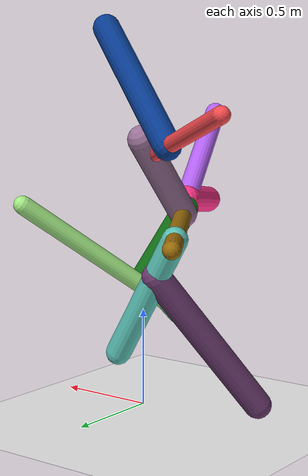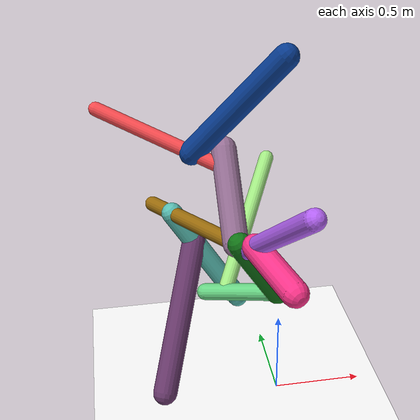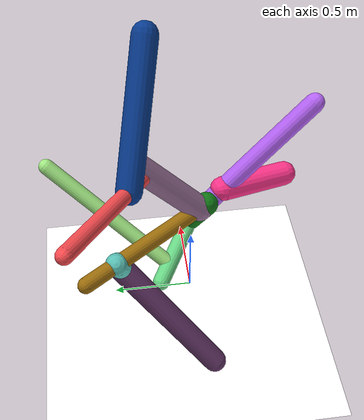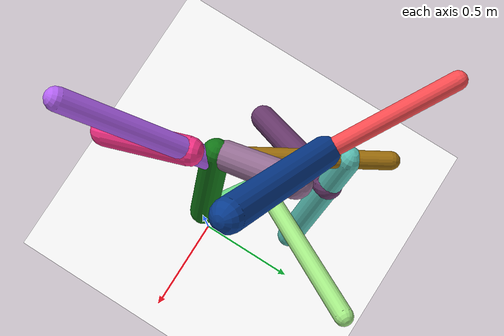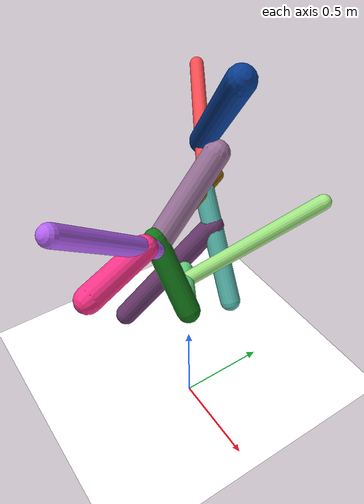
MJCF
<mujoco model="morphology">
  <option timestep="0.01"/>
  <default>
    <default class="/"/>
    <default class="0/"/>
    <default class="0/1/"/>
    <default class="0/2/"/>
    <default class="0/2/3/"/>
    <default class="0/2/3/4/"/>
    <default class="0/2/3/4/5/"/>
    <default class="0/2/3/6/"/>
    <default class="0/2/3/6/7/"/>
    <default class="0/2/3/6/7/8/"/>
    <default class="0/2/9/"/>
    <default class="0/2/9/10/"/>
  </default>
  <asset>
    <texture name="texplane" type="2d" builtin="checker" rgb1="0.10000000000000001 0.20000000000000001 0.29999999999999999" rgb2="0.20000000000000001 0.29999999999999999 0.40000000000000002" width="300" height="300"/>
    <material name="MatPlane" class="/" texture="texplane" texrepeat="20 20" specular="1" shininess="1" reflectance="0.5"/>
  </asset>
  <worldbody>
    <light name="//unnamed_light_0" class="/" directional="true" pos="0 0 1.5" dir="0 0 -1.3" cutoff="100" exponent="1" diffuse="1 1 1" specular="0.10000000000000001 0.10000000000000001 0.10000000000000001"/>
    <geom name="ground" class="/" type="plane" size="15 15 0.5" material="MatPlane" rgba="1 1 1 1"/>
    <site name="body" class="/" size="9.9999999999999995e-07 9.9999999999999995e-07 9.9999999999999995e-07" pos="0 0 0.67829695940017698"/>
    <body pos="0 0 0.67829695940017698" name="0/">
      <freejoint name="0/"/>
      <geom name="0/geom" class="0/" type="capsule" contype="1" conaffinity="1" condim="3" size="0.0483660345895311" rgba="0.41094386830967689 0.84004892882108584 0.52018931476803842 1" friction="0.59999999999999998 0.10000000000000001 0.10000000000000001" fromto="0 0 0 -0.38193567033395431 0.22649511795986321 -0.10607651722921729"/>
      <site name="0/end0" class="0/" size="0.0050000000000000001" pos="-0.38193567033395431 0.22649511795986321 -0.10607651722921729"/>
      <site name="0/attach1" class="0/" size="9.9999999999999995e-07 9.9999999999999995e-07 9.9999999999999995e-07" pos="-0.27826222426195835 0.1650147922891799 -0.077282877507500153"/>
      <body pos="-0.27826222426195835 0.1650147922891799 -0.077282877507500153" name="0/1/">
        <geom name="0/1/geom" class="0/1/" type="capsule" contype="1" conaffinity="1" condim="3" size="0.043687060271477118" rgba="0.63786593497941912 0.91874543900709693 0.51533837400754556 1" friction="0.59999999999999998 0.10000000000000001 0.10000000000000001" fromto="0 0 0 0.36125960737039353 0.63655947439329053 0.51742291570573062"/>
        <site name="0/1/end1" class="0/1/" size="0.0050000000000000001" pos="0.36125960737039353 0.63655947439329053 0.51742291570573062"/>
      </body>
      <site name="0/attach2" class="0/" size="9.9999999999999995e-07 9.9999999999999995e-07 9.9999999999999995e-07" pos="-0.011078693913618362 0.0065698762375668426 -0.0030769298525524179"/>
      <body pos="-0.011078693913618362 0.0065698762375668426 -0.0030769298525524179" name="0/2/">
        <geom name="0/2/geom" class="0/2/" type="capsule" contype="1" conaffinity="1" condim="3" size="0.065122725314739477" rgba="0.072172827804032669 0.46596828733030449 0.092570430458930097 1" friction="0.59999999999999998 0.10000000000000001 0.10000000000000001" fromto="0 0 0 -0.22010603590919586 -0.05320626547681484 0.36221440549367911"/>
        <site name="0/2/end2" class="0/2/" size="0.0050000000000000001" pos="-0.22010603590919586 -0.05320626547681484 0.36221440549367911"/>
        <site name="0/2/attach3" class="0/2/" size="9.9999999999999995e-07 9.9999999999999995e-07 9.9999999999999995e-07" pos="-0.211112024740851 -0.051032141791620612 0.34741353738077774"/>
        <body pos="-0.211112024740851 -0.051032141791620612 0.34741353738077774" name="0/2/3/">
          <joint name="0/2/3/joint/" class="0/2/" type="hinge" axis="0.85703274839727372 -0.074884086881490813 0.50979137076508141" limited="true" range="-45.152647463835109 45.152647463835109"/>
          <geom name="0/2/3/geom" class="0/2/3/" type="capsule" contype="1" conaffinity="1" condim="3" size="0.043133629195659447" rgba="0.60691610621722702 0.42379121445857104 0.045317016395971743 1" friction="0.59999999999999998 0.10000000000000001 0.10000000000000001" fromto="0 0 0 -0.41108861589311835 0.67228586060736206 -0.065804615223018836"/>
          <site name="0/2/3/end3" class="0/2/3/" size="0.0050000000000000001" pos="-0.41108861589311835 0.67228586060736206 -0.065804615223018836"/>
          <site name="0/2/3/attach4" class="0/2/3/" size="9.9999999999999995e-07 9.9999999999999995e-07 9.9999999999999995e-07" pos="-0.31085745054789887 0.5083698759542884 -0.049760207730567621"/>
          <body pos="-0.31085745054789887 0.5083698759542884 -0.049760207730567621" name="0/2/3/4/">
            <geom name="0/2/3/4/geom" class="0/2/3/4/" type="capsule" contype="1" conaffinity="1" condim="3" size="0.061182086752328106" rgba="0.35242733409974325 0.75399225318358931 0.70771090766524558 1" friction="0.59999999999999998 0.10000000000000001 0.10000000000000001" fromto="0 0 0 0.37012985112784769 -0.053955410726649333 -0.5874109454923534"/>
            <site name="0/2/3/4/end4" class="0/2/3/4/" size="0.0050000000000000001" pos="0.37012985112784769 -0.053955410726649333 -0.5874109454923534"/>
            <site name="0/2/3/4/attach5" class="0/2/3/4/" size="9.9999999999999995e-07 9.9999999999999995e-07 9.9999999999999995e-07" pos="0.11789168133136163 -0.017185574381818069 -0.18709883513993636"/>
            <body pos="0.11789168133136163 -0.017185574381818069 -0.18709883513993636" name="0/2/3/4/5/">
              <joint name="0/2/3/4/5/joint/" class="0/2/3/4/" type="hinge" axis="0.84705954260569249 0.048614993430904307 0.52926998185647023" limited="true" range="-50.809587604132048 50.809587604132048"/>
              <geom name="0/2/3/4/5/geom" class="0/2/3/4/5/" type="capsule" contype="1" conaffinity="1" condim="3" size="0.068869044885044015" rgba="0.41733231819738503 0.22800677258760793 0.43075315708937134 1" friction="0.59999999999999998 0.10000000000000001 0.10000000000000001" fromto="0 0 0 -0.2463883180836175 -0.50490852414709697 -0.68577451208343332"/>
              <site name="0/2/3/4/5/end5" class="0/2/3/4/5/" size="0.0050000000000000001" pos="-0.2463883180836175 -0.50490852414709697 -0.68577451208343332"/>
            </body>
          </body>
          <site name="0/2/3/attach6" class="0/2/3/" size="9.9999999999999995e-07 9.9999999999999995e-07 9.9999999999999995e-07" pos="-0.022176827678627636 0.036267527499092025 -0.0035499343835848486"/>
          <body pos="-0.022176827678627636 0.036267527499092025 -0.0035499343835848486" name="0/2/3/6/">
            <joint name="0/2/3/6/joint/" class="0/2/3/" type="hinge" axis="-0.85424602402588234 -0.51739631116929052 0.050643732330686551" limited="true" range="-65.428093904964399 65.428093904964399"/>
            <geom name="0/2/3/6/geom" class="0/2/3/6/" type="capsule" contype="1" conaffinity="1" condim="3" size="0.069935332838410774" rgba="0.60578592249185659 0.44799156018562658 0.59953272262127155 1" friction="0.59999999999999998 0.10000000000000001 0.10000000000000001" fromto="0 0 0 -0.0063602210663751269 0.34685677851704466 0.38741562296409882"/>
            <site name="0/2/3/6/end6" class="0/2/3/6/" size="0.0050000000000000001" pos="-0.0063602210663751269 0.34685677851704466 0.38741562296409882"/>
            <site name="0/2/3/6/attach7" class="0/2/3/6/" size="9.9999999999999995e-07 9.9999999999999995e-07 9.9999999999999995e-07" pos="-0.0050151043921345976 0.27350039176765478 0.30548148751944953"/>
            <body pos="-0.0050151043921345976 0.27350039176765478 0.30548148751944953" name="0/2/3/6/7/">
              <geom name="0/2/3/6/7/geom" class="0/2/3/6/7/" type="capsule" contype="1" conaffinity="1" condim="3" size="0.04000899245714569" rgba="0.97365984277891204 0.29210365662059035 0.30983134729065687 1" friction="0.59999999999999998 0.10000000000000001 0.10000000000000001" fromto="0 0 0 -0.65967191149440141 0.39973609625347573 0.22707137351289719"/>
              <site name="0/2/3/6/7/end7" class="0/2/3/6/7/" size="0.0050000000000000001" pos="-0.65967191149440141 0.39973609625347573 0.22707137351289719"/>
              <site name="0/2/3/6/7/attach8" class="0/2/3/6/7/" size="9.9999999999999995e-07 9.9999999999999995e-07 9.9999999999999995e-07" pos="-0.17119013075583722 0.10373471022957328 0.058926835363537128"/>
              <body pos="-0.17119013075583722 0.10373471022957328 0.058926835363537128" name="0/2/3/6/7/8/">
                <joint name="0/2/3/6/7/8/joint/" class="0/2/3/6/7/" type="hinge" axis="0 -0.49392487178698874 0.86950458367406336" limited="true" range="-33.604849512799461 33.604849512799461"/>
                <geom name="0/2/3/6/7/8/geom" class="0/2/3/6/7/8/" type="capsule" contype="1" conaffinity="1" condim="3" size="0.067352288441571026" rgba="0.030700051412755891 0.23476968110425278 0.56716857722388092 1" friction="0.59999999999999998 0.10000000000000001 0.10000000000000001" fromto="0 0 0 0.47175137649121002 -0.14337363349943133 0.54719731215080536"/>
                <site name="0/2/3/6/7/8/end8" class="0/2/3/6/7/8/" size="0.0050000000000000001" pos="0.47175137649121002 -0.14337363349943133 0.54719731215080536"/>
              </body>
            </body>
          </body>
        </body>
        <site name="0/2/attach9" class="0/2/" size="9.9999999999999995e-07 9.9999999999999995e-07 9.9999999999999995e-07" pos="-0.19040121524259312 -0.046025714667292897 0.31333108471782961"/>
        <body pos="-0.19040121524259312 -0.046025714667292897 0.31333108471782961" name="0/2/9/">
          <joint name="0/2/9/joint/" class="0/2/" type="hinge" axis="0.85703274839727372 -0.074884086881490813 0.50979137076508141" limited="true" range="-60.532614972638861 60.532614972638861"/>
          <geom name="0/2/9/geom" class="0/2/9/" type="capsule" contype="1" conaffinity="1" condim="3" size="0.053119780988781728" rgba="0.71101389480019617 0.38841477203625874 0.96378934704675578 1" friction="0.59999999999999998 0.10000000000000001 0.10000000000000001" fromto="0 0 0 0.18980309164831488 -0.59702018619886887 0.50379507274244717"/>
          <site name="0/2/9/end9" class="0/2/9/" size="0.0050000000000000001" pos="0.18980309164831488 -0.59702018619886887 0.50379507274244717"/>
          <site name="0/2/9/attach10" class="0/2/9/" size="9.9999999999999995e-07 9.9999999999999995e-07 9.9999999999999995e-07" pos="0.033271080312001468 -0.10465322977833059 0.08831155583631084"/>
          <body pos="0.033271080312001468 -0.10465322977833059 0.08831155583631084" name="0/2/9/10/">
            <joint name="0/2/9/10/joint/" class="0/2/9/" type="hinge" axis="0.97172862635562252 0.18044081856556776 -0.15226486041238491" limited="true" range="-58.414681064799467 58.414681064799467"/>
            <geom name="0/2/9/10/geom" class="0/2/9/10/" type="capsule" contype="1" conaffinity="1" condim="3" size="0.068259665805938813" rgba="0.99514182884422742 0.19980919465231772 0.54348417174867192 1" friction="0.59999999999999998 0.10000000000000001 0.10000000000000001" fromto="0 0 0 0.11977159218486033 -0.37091969580868345 -0.0478499642257455"/>
            <site name="0/2/9/10/end10" class="0/2/9/10/" size="0.0050000000000000001" pos="0.11977159218486033 -0.37091969580868345 -0.0478499642257455"/>
          </body>
        </body>
      </body>
      <camera name="0/iso" class="0/" mode="trackcom" pos="-2.2999999999999998 -2.2999999999999998 1" xyaxes="0.45000000000000001 -0.45000000000000001 0 0.29999999999999999 0.14999999999999999 0.93999999999999995"/>
    </body>
  </worldbody>
  <actuator>
    <motor name="0/2/3/motor" class="0/2/3/" ctrllimited="true" ctrlrange="-1 1" gear="56" joint="0/2/3/joint/"/>
    <motor name="0/2/3/4/5/motor" class="0/2/3/4/5/" ctrllimited="true" ctrlrange="-1 1" gear="61" joint="0/2/3/4/5/joint/"/>
    <motor name="0/2/3/6/motor" class="0/2/3/6/" ctrllimited="true" ctrlrange="-1 1" gear="90" joint="0/2/3/6/joint/"/>
    <motor name="0/2/3/6/7/8/motor" class="0/2/3/6/7/8/" ctrllimited="true" ctrlrange="-1 1" gear="80" joint="0/2/3/6/7/8/joint/"/>
    <motor name="0/2/9/motor" class="0/2/9/" ctrllimited="true" ctrlrange="-1 1" gear="53" joint="0/2/9/joint/"/>
    <motor name="0/2/9/10/motor" class="0/2/9/10/" ctrllimited="true" ctrlrange="-1 1" gear="88" joint="0/2/9/10/joint/"/>
  </actuator>
  <sensor>
    <subtreelinvel name="velocity" body="0/"/>
  </sensor>
</mujoco>
